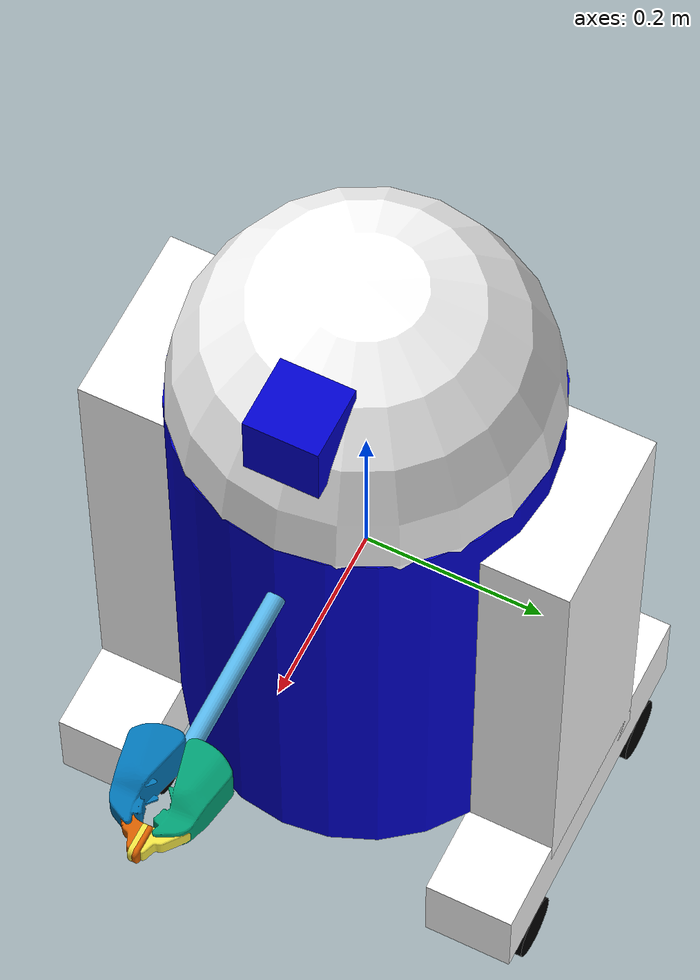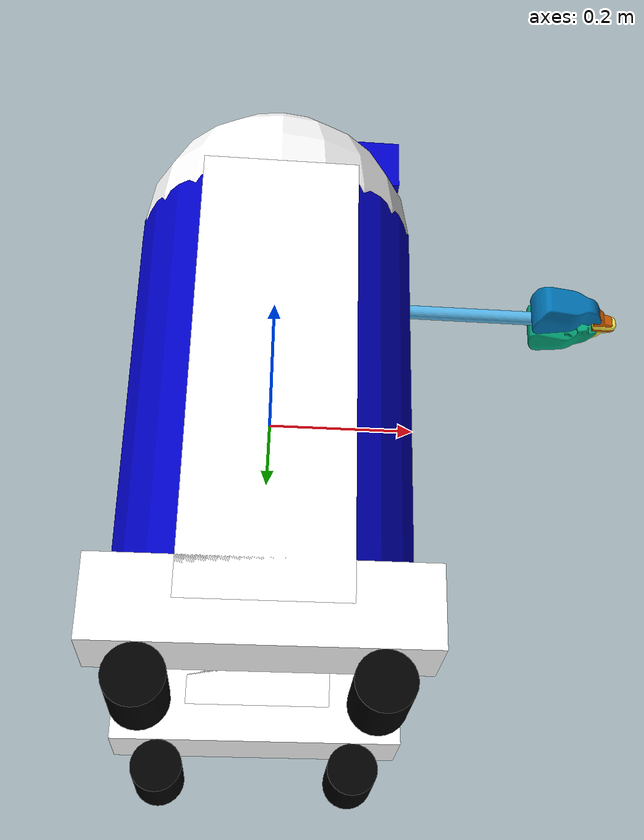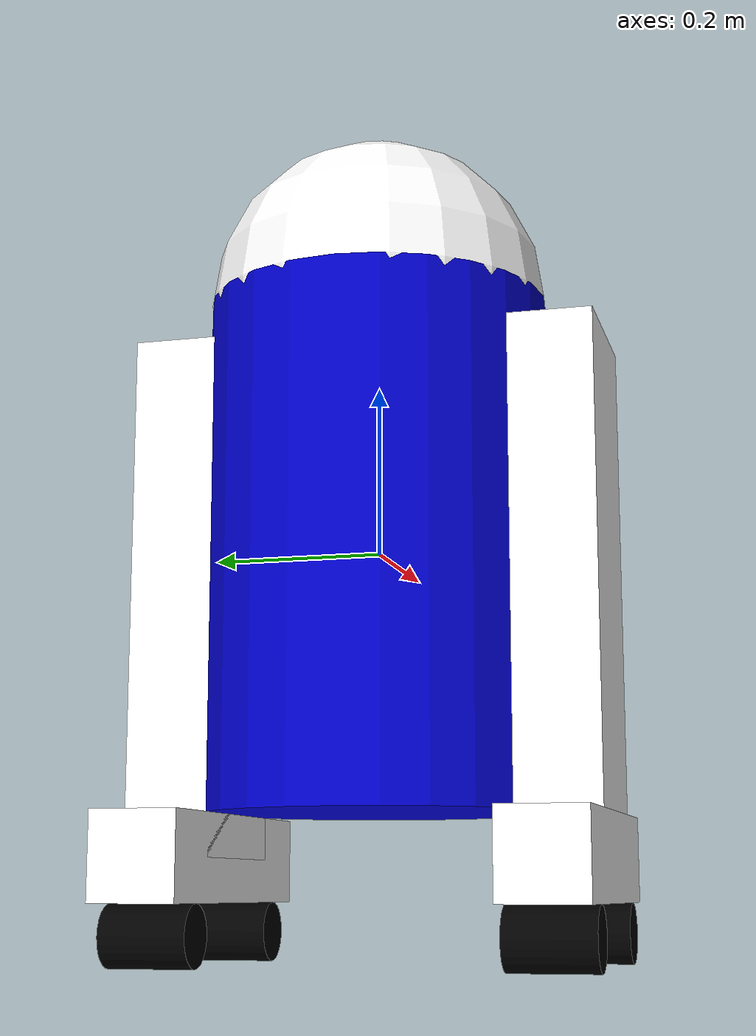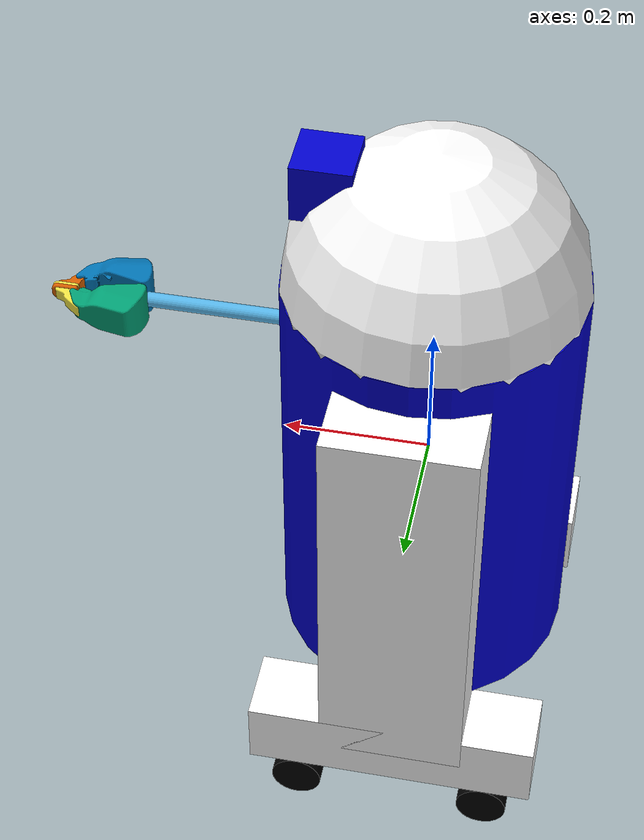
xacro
<?xml version="1.0"?>
<robot name="diff_drive" xmlns:xacro="http://ros.org/wiki/xacro">

  <xacro:property name="width" value="0.2" />
  <xacro:property name="leglen" value="0.6" />
  <xacro:property name="polelen" value="0.2" />
  <xacro:property name="bodylen" value="0.6" />
  <xacro:property name="baselen" value="0.4" />
  <xacro:property name="wheeldiam" value="0.07" />

  <material name="blue">
    <color rgba="0 0 0.8 1"/>
  </material>

  <material name="black">
    <color rgba="0 0 0 1"/>
  </material>

  <material name="white">
    <color rgba="1 1 1 1"/>
  </material>

  <xacro:macro name="default_inertial" params="mass">
    <inertial>
      <mass value="${mass}" />
      <inertia ixx="1e-3" ixy="0.0" ixz="0.0" iyy="1e-3" iyz="0.0" izz="1e-3" />
    </inertial>
  </xacro:macro>

  <link name="base_link">
    <visual>
      <geometry>
        <cylinder radius="${width}" length="${bodylen}"/>
      </geometry>
      <material name="blue"/>
    </visual>
    <collision>
      <geometry>
        <cylinder radius="${width}" length="${bodylen}"/>
      </geometry>
    </collision>
    <xacro:default_inertial mass="10"/>
  </link>

  <xacro:macro name="wheel" params="prefix suffix reflect">
    <link name="${prefix}_${suffix}_wheel">
      <visual>
        <origin xyz="0 0 0" rpy="${pi/2} 0 0" />
        <geometry>
          <cylinder radius="${wheeldiam/2}" length="0.1"/>
        </geometry>
        <material name="black"/>
      </visual>
      <collision>
        <origin xyz="0 0 0" rpy="${pi/2} 0 0" />
        <geometry>
          <cylinder radius="${wheeldiam/2}" length="0.1"/>
        </geometry>
      </collision>
      <xacro:default_inertial mass="1"/>
    </link>
    <joint name="${prefix}_${suffix}_wheel_joint" type="continuous">
      <axis xyz="0 1 0" rpy="0 0 0" />
      <parent link="${prefix}_base"/>
      <child link="${prefix}_${suffix}_wheel"/>
      <origin xyz="${baselen*reflect/3} 0 -${wheeldiam/2+.05}" rpy="0 0 0"/>
    </joint>
  </xacro:macro>

  <xacro:macro name="leg" params="prefix reflect">
    <link name="${prefix}_leg">
      <visual>
        <geometry>
          <box size="${leglen} 0.1 0.2"/>
        </geometry>
        <origin xyz="0 0 -${leglen/2}" rpy="0 ${pi/2} 0"/>
        <material name="white"/>
      </visual>
      <collision>
        <geometry>
          <box size="${leglen} 0.1 0.2"/>
        </geometry>
        <origin xyz="0 0 -${leglen/2}" rpy="0 ${pi/2} 0"/>
      </collision>
      <xacro:default_inertial mass="10"/>
    </link>

    <joint name="base_to_${prefix}_leg" type="fixed">
      <parent link="base_link"/>
      <child link="${prefix}_leg"/>
      <origin xyz="0 ${reflect*(width+.02)} 0.25" />
    </joint>

    <link name="${prefix}_base">
      <visual>
        <geometry>
          <box size="${baselen} 0.1 0.1"/>
        </geometry>
        <material name="white"/>
      </visual>
      <collision>
        <geometry>
          <box size="${baselen} 0.1 0.1"/>
        </geometry>
      </collision>
      <xacro:default_inertial mass="10"/>
    </link>

    <joint name="${prefix}_base_joint" type="fixed">
      <parent link="${prefix}_leg"/>
      <child link="${prefix}_base"/>
      <origin xyz="0 0 ${-leglen}" />
    </joint>
    <xacro:wheel prefix="${prefix}" suffix="front" reflect="1"/>
    <xacro:wheel prefix="${prefix}" suffix="back" reflect="-1"/>
  </xacro:macro>
  <xacro:leg prefix="right" reflect="-1" />
  <xacro:leg prefix="left" reflect="1" />

  <joint name="gripper_extension" type="prismatic">
    <parent link="base_link"/>
    <child link="gripper_pole"/>
    <origin rpy="0 0 0" xyz="${width-.01} 0 0.2"/>
    <limit effort="30" lower="-${width*2-.02}" upper="0" velocity="0.2"/>
    <dynamics damping="0.0" friction="0.0"/>
  </joint>

  <link name="gripper_pole">
    <visual>
      <geometry>
        <cylinder length="${polelen}" radius="0.01"/>
      </geometry>
      <origin xyz="${polelen/2} 0 0" rpy="0 ${pi/2} 0 "/>
    </visual>
    <collision>
      <geometry>
        <cylinder length="${polelen}" radius="0.01"/>
      </geometry>
      <origin xyz="${polelen/2} 0 0" rpy="0 ${pi/2} 0 "/>
    </collision>
    <xacro:default_inertial mass="0.05"/>
  </link>

  <xacro:macro name="gripper" params="prefix reflect *extra_tag">
    <joint name="${prefix}_gripper_joint" type="revolute">
      <xacro:insert_block name="extra_tag" />
      <axis xyz="0 0 ${reflect}"/>
      <origin rpy="0 0 0" xyz="${polelen} ${reflect*0.01} 0"/>
      <parent link="gripper_pole"/>
      <child link="${prefix}_gripper"/>
      <limit effort="30" lower="0.0" upper="0.548" velocity="1.0"/>
      <dynamics damping="0.0" friction="0.0"/>
    </joint>
    <link name="${prefix}_gripper">
      <visual>
        <origin rpy="${(reflect-1)/2*pi} 0 0" xyz="0 0 0"/>
        <geometry>
          <mesh filename="package://urdf_tutorial/meshes/l_finger.dae"/>
        </geometry>
      </visual>
      <collision>
        <geometry>
          <mesh filename="package://urdf_tutorial/meshes/l_finger.dae"/>
        </geometry>
        <origin rpy="${(reflect-1)/2*pi} 0 0" xyz="0 0 0"/>
      </collision>
      <xacro:default_inertial mass="0.05"/>
    </link>

    <joint name="${prefix}_tip_joint" type="fixed">
      <parent link="${prefix}_gripper"/>
      <child link="${prefix}_tip"/>
    </joint>
    <link name="${prefix}_tip">
      <visual>
        <origin rpy="${(reflect-1)/2*pi} 0 0" xyz="0.09137 0.00495 0"/>
        <geometry>
          <mesh filename="package://urdf_tutorial/meshes/l_finger_tip.dae"/>
        </geometry>
      </visual>
      <collision>
        <geometry>
          <mesh filename="package://urdf_tutorial/meshes/l_finger_tip.dae"/>
        </geometry>
        <origin rpy="${(reflect-1)/2*pi} 0 0" xyz="0.09137 0.00495 0"/>
      </collision>
      <xacro:default_inertial mass="0.05"/>
    </link>
  </xacro:macro>

  <xacro:gripper prefix="left" reflect="1">
    <dynamics damping="0.0" friction="0.0"/>
  </xacro:gripper>
  <xacro:gripper prefix="right" reflect="-1">
     <mimic joint="left_gripper_joint"/>
  </xacro:gripper>

  <link name="head">
    <visual>
      <geometry>
        <sphere radius="${width}"/>
      </geometry>
      <material name="white"/>
    </visual>
    <collision>
      <geometry>
        <sphere radius="${width}"/>
      </geometry>
    </collision>
    <xacro:default_inertial mass="2"/>
  </link>

  <joint name="head_swivel" type="continuous">
    <parent link="base_link"/>
    <child link="head"/>
    <axis xyz="0 0 1"/>
    <origin xyz="0 0 ${bodylen/2}"/>
    <limit effort="30" velocity="1.0"/>
    <dynamics damping="0.0" friction="0.0"/>
  </joint>

  <link name="box">
    <visual>
      <geometry>
        <box size="0.08 0.08 0.08"/>
      </geometry>
      <material name="blue"/>
      <origin xyz="-0.04 0 0"/>
    </visual>
    <collision>
      <geometry>
        <box size="0.08 0.08 0.08"/>
      </geometry>
    </collision>
    <xacro:default_inertial mass="1"/>
  </link>

  <joint name="tobox" type="fixed">
    <parent link="head"/>
    <child link="box"/>
    <origin xyz="${.707*width+0.04} 0 ${.707*width}"/>
  </joint>

  <ros2_control name="GazeboSystem" type="system">
    <hardware>
      <plugin>gazebo_ros2_control/GazeboSystem</plugin>
    </hardware>
    <joint name="head_swivel">
      <command_interface name="position" />
      <command_interface name="velocity" />
      <state_interface name="position"/>
      <state_interface name="velocity"/>
    </joint>
    <joint name="gripper_extension">
      <command_interface name="position" />
      <command_interface name="velocity" />
      <state_interface name="position"/>
      <state_interface name="velocity"/>
    </joint>
    <joint name="left_gripper_joint">
      <command_interface name="position" />
      <command_interface name="velocity" />
      <state_interface name="position"/>
      <state_interface name="velocity"/>
    </joint>
    <joint name="right_gripper_joint">
      <command_interface name="position" />
      <command_interface name="velocity" />
      <state_interface name="position"/>
      <state_interface name="velocity"/>
      <param name="mimic">left_gripper_joint</param>
      <param name="multiplier">1</param>
    </joint>
    <joint name="left_front_wheel_joint">
      <command_interface name="velocity" />
      <state_interface name="position"/>
      <state_interface name="velocity"/>
    </joint>
    <joint name="left_back_wheel_joint">
      <command_interface name="velocity" />
      <state_interface name="position"/>
      <state_interface name="velocity"/>
    </joint>
    <joint name="right_front_wheel_joint">
      <command_interface name="velocity" />
      <state_interface name="position"/>
      <state_interface name="velocity"/>
    </joint>
    <joint name="right_back_wheel_joint">
      <command_interface name="velocity" />
      <state_interface name="position"/>
      <state_interface name="velocity"/>
    </joint>
  </ros2_control>

  <gazebo>
    <plugin filename="libgazebo_ros2_control.so" name="gazebo_ros2_control">
      <parameters>$(find urdf_sim_tutorial)/config/diffdrive.yaml</parameters>
    </plugin>
  </gazebo>

  <!-- 1. Laser Joint and Link -->
  <joint name="laser_joint" type="fixed">
    <parent link="base_link"/>
    <child link="laser_frame"/>
    <origin xyz="0.1 0 0.2" rpy="0 0 0"/>
  </joint>

  <link name="laser_frame">
    <visual>
      <geometry>
        <cylinder radius="0.05" length="0.04"/>
      </geometry>
      <material name="black"/>
    </visual>
    <collision>
      <geometry>
        <cylinder radius="0.05" length="0.04"/>
      </geometry>
    </collision>
    <xacro:default_inertial mass="0.1"/>
  </link>

  <!-- 2. Gazebo ROS Ray Sensor Plugin (LiDAR) -->
  <gazebo reference="laser_frame">
    <sensor name="lidar" type="ray">
      <always_on>true</always_on>
      <visualize>true</visualize>
      <update_rate>10</update_rate>
      <ray>
        <scan>
          <horizontal>
            <samples>360</samples>
            <resolution>1</resolution>
            <min_angle>-3.14159</min_angle>
            <max_angle>3.14159</max_angle>
          </horizontal>
        </scan>
        <range>
          <min>0.3</min>
          <max>12.0</max>
          <resolution>0.01</resolution>
        </range>
      </ray>
      <plugin name="laser_controller" filename="libgazebo_ros_ray_sensor.so">
        <ros>
          <remapping>~/out:=scan</remapping>
        </ros>
        <output_type>sensor_msgs/LaserScan</output_type>
        <frame_name>laser_frame</frame_name>
      </plugin>
    </sensor>
  </gazebo>

  <!-- 3. IMU Joint and Link -->
  <joint name="imu_joint" type="fixed">
    <parent link="base_link"/>
    <child link="imu_link"/>
    <origin xyz="0 0 0.1" rpy="0 0 0"/>
  </joint>

  <link name="imu_link">
    <visual>
      <geometry>
        <box size="0.02 0.02 0.02"/>
      </geometry>
      <material name="blue"/>
    </visual>
    <collision>
      <geometry>
        <box size="0.02 0.02 0.02"/>
      </geometry>
    </collision>
    <xacro:default_inertial mass="0.01"/>
  </link>

  <!-- 4. Gazebo ROS IMU Sensor Plugin -->
  <gazebo reference="imu_link">
    <sensor name="imu_sensor" type="imu">
      <always_on>true</always_on>
      <update_rate>100</update_rate>
      <imu/>
      <plugin name="imu_plugin" filename="libgazebo_ros_imu_sensor.so">
        <ros>
          <remapping>~/out:=imu/data</remapping>
        </ros>
        <initial_orientation_as_reference>false</initial_orientation_as_reference>
      </plugin>
    </sensor>
  </gazebo>

  <!-- 5. Camera Joint and Link -->
  <joint name="camera_joint" type="fixed">
    <parent link="base_link"/>
    <child link="camera_link"/>
    <origin xyz="0.1 0 0.35" rpy="0 0 0"/>
  </joint>

  <link name="camera_link">
    <visual>
      <geometry>
        <box size="0.02 0.02 0.02"/>
      </geometry>
      <material name="black"/>
    </visual>
    <collision>
      <geometry>
        <box size="0.02 0.02 0.02"/>
      </geometry>
    </collision>
    <xacro:default_inertial mass="0.01"/>
  </link>

  <!-- Optical frame - rotates ROS convention (X-fwd, Z-up) into camera convention
       (Z-fwd, Y-down). Needed for correct TF into ros2_perception nodes later. -->
  <joint name="camera_optical_joint" type="fixed">
    <parent link="camera_link"/>
    <child link="camera_link_optical"/>
    <origin xyz="0 0 0" rpy="${-pi/2} 0 ${-pi/2}"/>
  </joint>
  <link name="camera_link_optical"/>

  <!-- 6. Gazebo ROS Camera Sensor Plugin -->
  <gazebo reference="camera_link">
    <sensor name="camera_sensor" type="camera">
      <always_on>true</always_on>
      <update_rate>30</update_rate>
      <camera name="camera">
        <horizontal_fov>1.3962634</horizontal_fov>
        <image>
          <width>640</width>
          <height>480</height>
          <format>R8G8B8</format>
        </image>
        <clip>
          <near>0.02</near>
          <far>300</far>
        </clip>
      </camera>
      <plugin name="camera_controller" filename="libgazebo_ros_camera.so">
        <ros>
          <namespace>camera</namespace>
        </ros>
        <camera_name>camera</camera_name>
        <frame_name>camera_link_optical</frame_name>
      </plugin>
    </sensor>
  </gazebo>

</robot>
